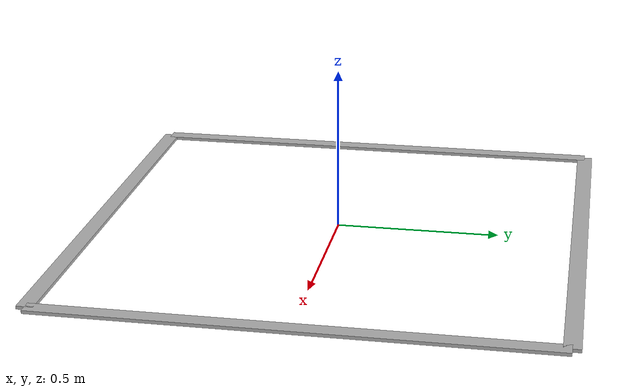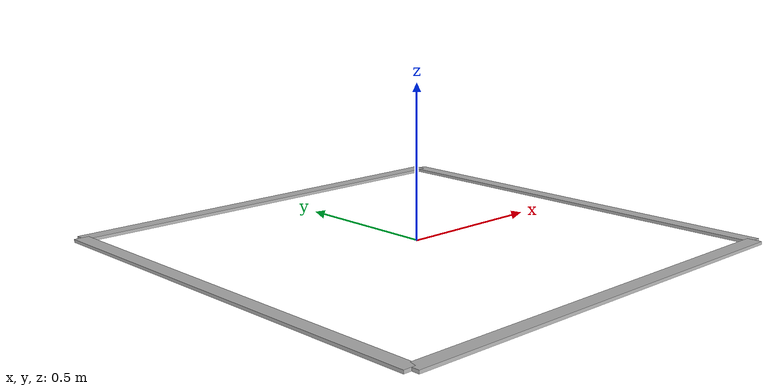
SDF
<?xml version='1.0'?>
<sdf version='1.7'>
  <model name='charging_station_safety'>
    <link name='left_side'>
      <pose>-0.75 0 0 0 -0 0</pose>
      <self_collide>0</self_collide>
      <enable_wind>0</enable_wind>
      <kinematic>0</kinematic>
      <visual name='left_side_visual'>
        <geometry>
          <box>
            <size>0.05 1.5 0.01</size>
          </box>
        </geometry>
        <material>
          <script>
            <uri>model://charging_station/materials/scripts</uri>
            <uri>model://charging_station/materials/textures</uri>
            <name>safety_tape_texture</name>
          </script>
        </material>
        <pose>0 0 0 0 -0 0</pose>
        <transparency>0</transparency>
        <cast_shadows>1</cast_shadows>
      </visual>
      <collision name='left_side_collision'>
        <laser_retro>0</laser_retro>
        <max_contacts>10</max_contacts>
        <pose>0 0 0 0 -0 0</pose>
        <geometry>
          <box>
            <size>0.05 1.5 0.01</size>
          </box>
        </geometry>
        <surface>
          <friction>
            <ode>
              <mu>1</mu>
              <mu2>1</mu2>
              <fdir1>0 0 0</fdir1>
              <slip1>0</slip1>
              <slip2>0</slip2>
            </ode>
            <torsional>
              <coefficient>1</coefficient>
              <patch_radius>0</patch_radius>
              <surface_radius>0</surface_radius>
              <use_patch_radius>1</use_patch_radius>
              <ode>
                <slip>0</slip>
              </ode>
            </torsional>
          </friction>
          <bounce>
            <restitution_coefficient>0</restitution_coefficient>
            <threshold>1e+06</threshold>
          </bounce>
          <contact>
            <collide_without_contact>0</collide_without_contact>
            <collide_without_contact_bitmask>1</collide_without_contact_bitmask>
            <collide_bitmask>1</collide_bitmask>
            <ode>
              <soft_cfm>0</soft_cfm>
              <soft_erp>0.2</soft_erp>
              <kp>1e+13</kp>
              <kd>1</kd>
              <max_vel>0.01</max_vel>
              <min_depth>0</min_depth>
            </ode>
            <bullet>
              <split_impulse>1</split_impulse>
              <split_impulse_penetration_threshold>-0.01</split_impulse_penetration_threshold>
              <soft_cfm>0</soft_cfm>
              <soft_erp>0.2</soft_erp>
              <kp>1e+13</kp>
              <kd>1</kd>
            </bullet>
          </contact>
        </surface>
      </collision>
    </link>
    <link name='bottom_side'>
      <pose>0 -0.75 0 0 -0 0</pose>
      <self_collide>0</self_collide>
      <enable_wind>0</enable_wind>
      <kinematic>0</kinematic>
      <visual name='bottom_side_visual'>
        <geometry>
          <box>
            <size>1.5 0.05 0.01</size>
          </box>
        </geometry>
        <material>
          <script>
           <uri>model://charging_station/materials/scripts</uri>
            <uri>model://charging_station/materials/textures</uri>
            <name>safety_tape_texture</name>
          </script>
        </material>
        <pose>0 0 0 0 -0 0</pose>
        <transparency>0</transparency>
        <cast_shadows>1</cast_shadows>
      </visual>
      <collision name='bottom_side_collision'>
        <laser_retro>0</laser_retro>
        <max_contacts>10</max_contacts>
        <pose>0 0 0 0 -0 0</pose>
        <geometry>
          <box>
            <size>1.5 0.05 0.01</size>
          </box>
        </geometry>
        <surface>
          <friction>
            <ode>
              <mu>1</mu>
              <mu2>1</mu2>
              <fdir1>0 0 0</fdir1>
              <slip1>0</slip1>
              <slip2>0</slip2>
            </ode>
            <torsional>
              <coefficient>1</coefficient>
              <patch_radius>0</patch_radius>
              <surface_radius>0</surface_radius>
              <use_patch_radius>1</use_patch_radius>
              <ode>
                <slip>0</slip>
              </ode>
            </torsional>
          </friction>
          <bounce>
            <restitution_coefficient>0</restitution_coefficient>
            <threshold>1e+06</threshold>
          </bounce>
          <contact>
            <collide_without_contact>0</collide_without_contact>
            <collide_without_contact_bitmask>1</collide_without_contact_bitmask>
            <collide_bitmask>1</collide_bitmask>
            <ode>
              <soft_cfm>0</soft_cfm>
              <soft_erp>0.2</soft_erp>
              <kp>1e+13</kp>
              <kd>1</kd>
              <max_vel>0.01</max_vel>
              <min_depth>0</min_depth>
            </ode>
            <bullet>
              <split_impulse>1</split_impulse>
              <split_impulse_penetration_threshold>-0.01</split_impulse_penetration_threshold>
              <soft_cfm>0</soft_cfm>
              <soft_erp>0.2</soft_erp>
              <kp>1e+13</kp>
              <kd>1</kd>
            </bullet>
          </contact>
        </surface>
      </collision>
    </link>
    <link name='right_side'>
      <pose>0.75 0 0 0 -0 0</pose>
      <self_collide>0</self_collide>
      <enable_wind>0</enable_wind>
      <kinematic>0</kinematic>
      <visual name='right_side_visual'>
        <geometry>
          <box>
            <size>0.05 1.5 0.01</size>
          </box>
        </geometry>
        <material>
          <script>
            <uri>model://charging_station/materials/scripts</uri>
            <uri>model://charging_station/materials/textures</uri>
            <name>safety_tape_texture</name>
          </script>
        </material>
        <pose>0 0 0 0 -0 0</pose>
        <transparency>0</transparency>
        <cast_shadows>1</cast_shadows>
      </visual>
      <collision name='right_side_collision'>
        <laser_retro>0</laser_retro>
        <max_contacts>10</max_contacts>
        <pose>0 0 0 0 -0 0</pose>
        <geometry>
          <box>
            <size>0.05 1.5 0.01</size>
          </box>
        </geometry>
        <surface>
          <friction>
            <ode>
              <mu>1</mu>
              <mu2>1</mu2>
              <fdir1>0 0 0</fdir1>
              <slip1>0</slip1>
              <slip2>0</slip2>
            </ode>
            <torsional>
              <coefficient>1</coefficient>
              <patch_radius>0</patch_radius>
              <surface_radius>0</surface_radius>
              <use_patch_radius>1</use_patch_radius>
              <ode>
                <slip>0</slip>
              </ode>
            </torsional>
          </friction>
          <bounce>
            <restitution_coefficient>0</restitution_coefficient>
            <threshold>1e+06</threshold>
          </bounce>
          <contact>
            <collide_without_contact>0</collide_without_contact>
            <collide_without_contact_bitmask>1</collide_without_contact_bitmask>
            <collide_bitmask>1</collide_bitmask>
            <ode>
              <soft_cfm>0</soft_cfm>
              <soft_erp>0.2</soft_erp>
              <kp>1e+13</kp>
              <kd>1</kd>
              <max_vel>0.01</max_vel>
              <min_depth>0</min_depth>
            </ode>
            <bullet>
              <split_impulse>1</split_impulse>
              <split_impulse_penetration_threshold>-0.01</split_impulse_penetration_threshold>
              <soft_cfm>0</soft_cfm>
              <soft_erp>0.2</soft_erp>
              <kp>1e+13</kp>
              <kd>1</kd>
            </bullet>
          </contact>
        </surface>
      </collision>
    </link>
    <link name='top_side'>
      <pose>0 0.75 0 0 -0 0</pose>
      <self_collide>0</self_collide>
      <enable_wind>0</enable_wind>
      <kinematic>0</kinematic>
      <visual name='top_side_visual'>
        <geometry>
          <box>
            <size>1.5 0.05 0.01</size>
          </box>
        </geometry>
        <material>
          <script>
           <uri>model://charging_station/materials/scripts</uri>
           <uri>model://charging_station/materials/textures</uri>
            <name>safety_tape_texture</name>
          </script>
        </material>
        <pose>0 0 0 0 -0 0</pose>
        <transparency>0</transparency>
        <cast_shadows>1</cast_shadows>
      </visual>
      <collision name='top_side_collision'>
        <laser_retro>0</laser_retro>
        <max_contacts>10</max_contacts>
        <pose>0 0 0 0 -0 0</pose>
        <geometry>
          <box>
            <size>1.5 0.05 0.01</size>
          </box>
        </geometry>
        <surface>
          <friction>
            <ode>
              <mu>1</mu>
              <mu2>1</mu2>
              <fdir1>0 0 0</fdir1>
              <slip1>0</slip1>
              <slip2>0</slip2>
            </ode>
            <torsional>
              <coefficient>1</coefficient>
              <patch_radius>0</patch_radius>
              <surface_radius>0</surface_radius>
              <use_patch_radius>1</use_patch_radius>
              <ode>
                <slip>0</slip>
              </ode>
            </torsional>
          </friction>
          <bounce>
            <restitution_coefficient>0</restitution_coefficient>
            <threshold>1e+06</threshold>
          </bounce>
          <contact>
            <collide_without_contact>0</collide_without_contact>
            <collide_without_contact_bitmask>1</collide_without_contact_bitmask>
            <collide_bitmask>1</collide_bitmask>
            <ode>
              <soft_cfm>0</soft_cfm>
              <soft_erp>0.2</soft_erp>
              <kp>1e+13</kp>
              <kd>1</kd>
              <max_vel>0.01</max_vel>
              <min_depth>0</min_depth>
            </ode>
            <bullet>
              <split_impulse>1</split_impulse>
              <split_impulse_penetration_threshold>-0.01</split_impulse_penetration_threshold>
              <soft_cfm>0</soft_cfm>
              <soft_erp>0.2</soft_erp>
              <kp>1e+13</kp>
              <kd>1</kd>
            </bullet>
          </contact>
        </surface>
      </collision>
    </link>
    <static>1</static>
    <allow_auto_disable>1</allow_auto_disable>
  </model>
</sdf>
